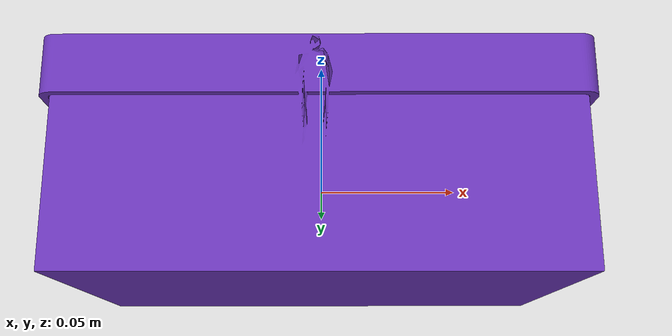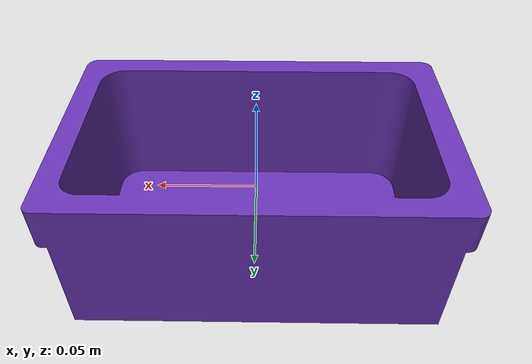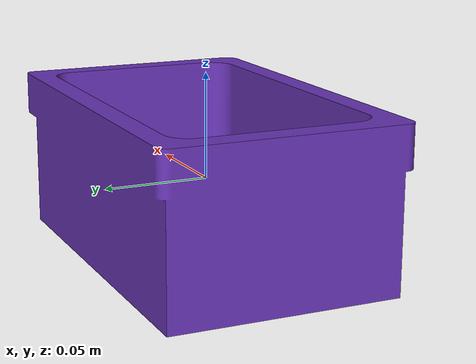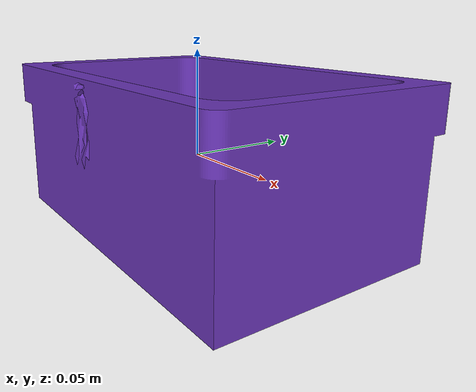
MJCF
<mujoco model="top_watertight_tiny">
  <default>
    <default group="2" type="mesh" contype="0" conaffinity="0">
      <geom group="2" type="mesh" contype="0" conaffinity="0"/>
    </default>
    <default group="3" type="mesh">
      <geom group="3" type="mesh"/>
    </default>
  </default>
  <asset>
    <mesh file="top_watertight_tiny.obj"/>
    <mesh file="top_watertight_tiny_collision_0.obj"/>
    <mesh file="top_watertight_tiny_collision_1.obj"/>
    <mesh file="top_watertight_tiny_collision_2.obj"/>
    <mesh file="top_watertight_tiny_collision_3.obj"/>
    <mesh file="top_watertight_tiny_collision_4.obj"/>
    <mesh file="top_watertight_tiny_collision_5.obj"/>
    <mesh file="top_watertight_tiny_collision_6.obj"/>
    <mesh file="top_watertight_tiny_collision_7.obj"/>
    <mesh file="top_watertight_tiny_collision_8.obj"/>
    <mesh file="top_watertight_tiny_collision_9.obj"/>
    <mesh file="top_watertight_tiny_collision_10.obj"/>
    <mesh file="top_watertight_tiny_collision_11.obj"/>
    <mesh file="top_watertight_tiny_collision_12.obj"/>
    <mesh file="top_watertight_tiny_collision_13.obj"/>
    <mesh file="top_watertight_tiny_collision_14.obj"/>
    <mesh file="top_watertight_tiny_collision_15.obj"/>
    <mesh file="top_watertight_tiny_collision_16.obj"/>
    <mesh file="top_watertight_tiny_collision_17.obj"/>
    <mesh file="top_watertight_tiny_collision_18.obj"/>
    <mesh file="top_watertight_tiny_collision_19.obj"/>
    <mesh file="top_watertight_tiny_collision_20.obj"/>
    <mesh file="top_watertight_tiny_collision_21.obj"/>
    <mesh file="top_watertight_tiny_collision_22.obj"/>
    <mesh file="top_watertight_tiny_collision_23.obj"/>
  </asset>
  <worldbody>
    <body name="top_watertight_tiny">
      <freejoint/>
      <geom mesh="top_watertight_tiny" group="2" type="mesh" rgba="0.4 0.2 0.7 1" contype="0" conaffinity="0"/>
      <geom mesh="top_watertight_tiny_collision_0" rgba="0.3140658446744782 0.621834688005761 0.8763933055207868 1" group="3" type="mesh"/>
      <geom mesh="top_watertight_tiny_collision_1" rgba="0.8303212958998953 0.28026548010861474 0.3521423199997168 1" group="3" type="mesh"/>
      <geom mesh="top_watertight_tiny_collision_2" rgba="0.7950195680014998 0.5412590188410457 0.14944642946984288 1" group="3" type="mesh"/>
      <geom mesh="top_watertight_tiny_collision_3" rgba="0.5508413140829649 0.1176410525078806 0.7167187204630013 1" group="3" type="mesh"/>
      <geom mesh="top_watertight_tiny_collision_4" rgba="0.22531484959671422 0.034494391268400704 0.5270170216022896 1" group="3" type="mesh"/>
      <geom mesh="top_watertight_tiny_collision_5" rgba="0.2683385800904481 0.04431623058599732 0.16025884424311554 1" group="3" type="mesh"/>
      <geom mesh="top_watertight_tiny_collision_6" rgba="0.4862073154784534 0.5473095896512075 0.07155794164879414 1" group="3" type="mesh"/>
      <geom mesh="top_watertight_tiny_collision_7" rgba="0.5368811456137217 0.7426600198572595 0.6195277893889714 1" group="3" type="mesh"/>
      <geom mesh="top_watertight_tiny_collision_8" rgba="0.9589557559920696 0.8765558233388048 0.18346281888586669 1" group="3" type="mesh"/>
      <geom mesh="top_watertight_tiny_collision_9" rgba="0.9578763305830081 0.32008001752487847 0.3016836136590927 1" group="3" type="mesh"/>
      <geom mesh="top_watertight_tiny_collision_10" rgba="0.3889401545495331 0.0022138329728068618 0.35094244988861156 1" group="3" type="mesh"/>
      <geom mesh="top_watertight_tiny_collision_11" rgba="0.14153519289511896 0.1308634462382694 0.28751114743516415 1" group="3" type="mesh"/>
      <geom mesh="top_watertight_tiny_collision_12" rgba="0.4411915800732358 0.913980463179461 0.5464991809011708 1" group="3" type="mesh"/>
      <geom mesh="top_watertight_tiny_collision_13" rgba="0.943849376904531 0.05765789597845161 0.79017892479356 1" group="3" type="mesh"/>
      <geom mesh="top_watertight_tiny_collision_14" rgba="0.960369644607922 0.1355248337576812 0.16716504761424422 1" group="3" type="mesh"/>
      <geom mesh="top_watertight_tiny_collision_15" rgba="0.8345660031360753 0.43768167967675664 0.6120748633317464 1" group="3" type="mesh"/>
      <geom mesh="top_watertight_tiny_collision_16" rgba="0.423634194360372 0.5207351557292262 0.30758277644607457 1" group="3" type="mesh"/>
      <geom mesh="top_watertight_tiny_collision_17" rgba="0.03752886868502647 0.6078361771805335 0.7039657922388555 1" group="3" type="mesh"/>
      <geom mesh="top_watertight_tiny_collision_18" rgba="0.4409335778587081 0.48468036331386366 0.21126310672278958 1" group="3" type="mesh"/>
      <geom mesh="top_watertight_tiny_collision_19" rgba="0.36847168300824984 0.9148637394891393 0.4604679009151732 1" group="3" type="mesh"/>
      <geom mesh="top_watertight_tiny_collision_20" rgba="0.9608495722297573 0.3079669458572347 0.5485810338376211 1" group="3" type="mesh"/>
      <geom mesh="top_watertight_tiny_collision_21" rgba="0.22145021926691477 0.10033359278185905 0.3911984850544171 1" group="3" type="mesh"/>
      <geom mesh="top_watertight_tiny_collision_22" rgba="0.6430895352853703 0.42856935317133926 0.6946509742760824 1" group="3" type="mesh"/>
      <geom mesh="top_watertight_tiny_collision_23" rgba="0.3207862548918009 0.5295914145859426 0.06873968224709603 1" group="3" type="mesh"/>
    </body>
  </worldbody>
</mujoco>
